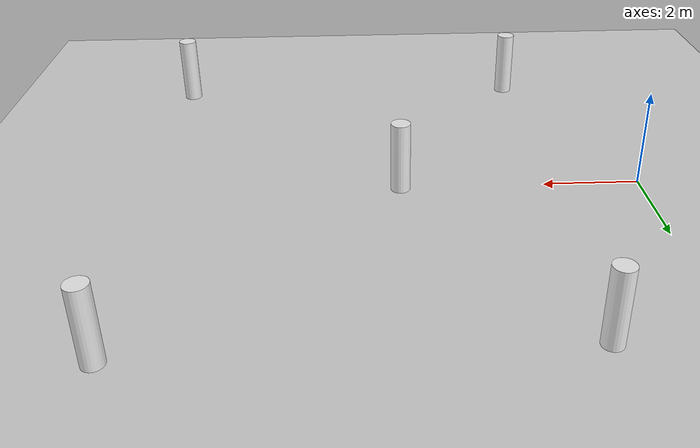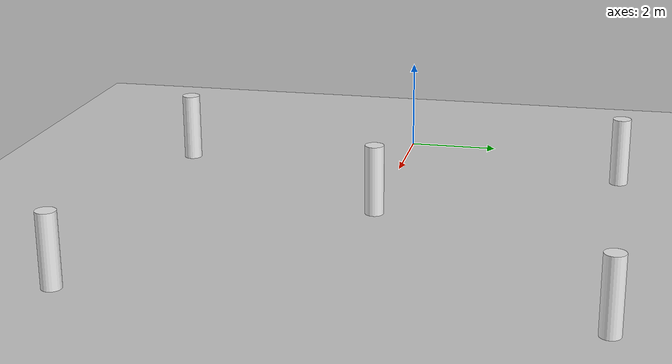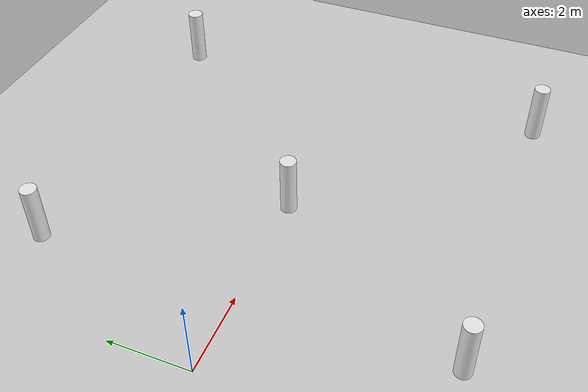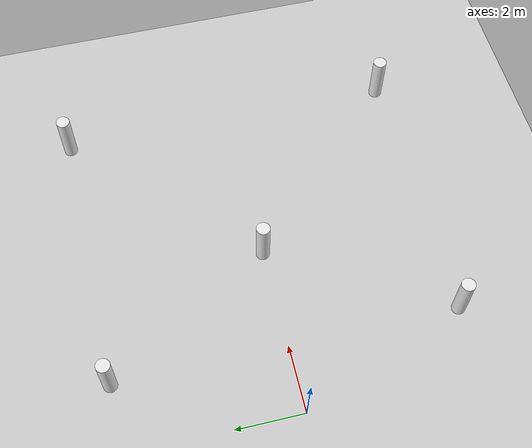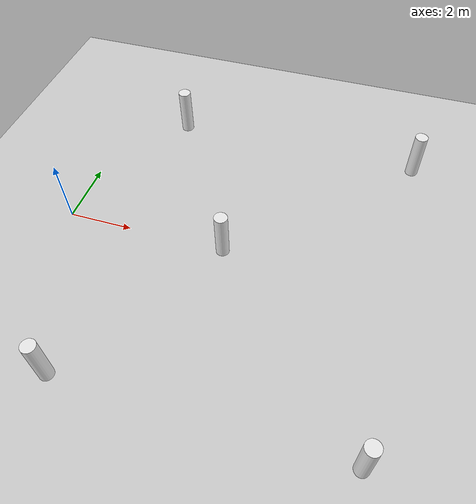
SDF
<?xml version="1.0" ?>
<sdf version="1.4">
  <world name="default">
    <!-- A global light source -->
    <include>
      <uri>model://sun</uri>
    </include>
    <!-- A ground plane -->
    <include>
      <uri>model://ground_plane</uri>
    </include>
    <!-- Cylinder -->
    <model name='unit_cylinder1'>
      <pose frame=''>2 -5 0.75 0 -0 0</pose>
      <link name='link'>
        <inertial>
          <mass>1</mass>
          <inertia>
            <ixx>0.145833</ixx>
            <ixy>0</ixy>
            <ixz>0</ixz>
            <iyy>0.145833</iyy>
            <iyz>0</iyz>
            <izz>0.125</izz>
          </inertia>
        </inertial>
        <collision name='collision'>
          <geometry>
            <cylinder>
              <radius>0.2</radius>
              <length>1.5</length>
            </cylinder>
          </geometry>
          <max_contacts>10</max_contacts>
        </collision>
        <visual name='visual'>
          <geometry>
            <cylinder>
              <radius>0.2</radius>
              <length>1.5</length>
            </cylinder>
          </geometry>
          <material>
            <script>
              <name>Gazebo/White</name>
              <uri>file://media/materials/scripts/gazebo.material</uri>
            </script>
          </material>
        </visual>
        <self_collide>0</self_collide>
        <kinematic>0</kinematic>
      </link>
    </model>

        <!-- Cylinder 2-->
    <model name='unit_cylinder2'>
      <pose frame=''>2 5 0.75 0 -0 0</pose>
      <link name='link'>
        <inertial>
          <mass>1</mass>
          <inertia>
            <ixx>0.145833</ixx>
            <ixy>0</ixy>
            <ixz>0</ixz>
            <iyy>0.145833</iyy>
            <iyz>0</iyz>
            <izz>0.125</izz>
          </inertia>
        </inertial>
        <collision name='collision'>
          <geometry>
            <cylinder>
              <radius>0.2</radius>
              <length>1.5</length>
            </cylinder>
          </geometry>
          <max_contacts>10</max_contacts>
        </collision>
        <visual name='visual'>
          <geometry>
            <cylinder>
              <radius>0.2</radius>
              <length>1.5</length>
            </cylinder>
          </geometry>
          <material>
            <script>
              <name>Gazebo/White</name>
              <uri>file://media/materials/scripts/gazebo.material</uri>
            </script>
          </material>
        </visual>
        <self_collide>0</self_collide>
        <kinematic>0</kinematic>
      </link>
    </model>

            <!-- Cylinder 3-->
    <model name='unit_cylinder3'>
      <pose frame=''>5 0 0.75 0 -0 0</pose>
      <link name='link'>
        <inertial>
          <mass>1</mass>
          <inertia>
            <ixx>0.145833</ixx>
            <ixy>0</ixy>
            <ixz>0</ixz>
            <iyy>0.145833</iyy>
            <iyz>0</iyz>
            <izz>0.125</izz>
          </inertia>
        </inertial>
        <collision name='collision'>
          <geometry>
            <cylinder>
              <radius>0.2</radius>
              <length>1.5</length>
            </cylinder>
          </geometry>
          <max_contacts>10</max_contacts>
        </collision>
        <visual name='visual'>
          <geometry>
            <cylinder>
              <radius>0.2</radius>
              <length>1.5</length>
            </cylinder>
          </geometry>
          <material>
            <script>
              <name>Gazebo/White</name>
              <uri>file://media/materials/scripts/gazebo.material</uri>
            </script>
          </material>
        </visual>
        <self_collide>0</self_collide>
        <kinematic>0</kinematic>
      </link>
    </model>

            <!-- Cylinder 4-->
    <model name='unit_cylinder4'>
      <pose frame=''>10 -5 0.75 0 -0 0</pose>
      <link name='link'>
        <inertial>
          <mass>1</mass>
          <inertia>
            <ixx>0.145833</ixx>
            <ixy>0</ixy>
            <ixz>0</ixz>
            <iyy>0.145833</iyy>
            <iyz>0</iyz>
            <izz>0.125</izz>
          </inertia>
        </inertial>
        <collision name='collision'>
          <geometry>
            <cylinder>
              <radius>0.2</radius>
              <length>1.5</length>
            </cylinder>
          </geometry>
          <max_contacts>10</max_contacts>
        </collision>
        <visual name='visual'>
          <geometry>
            <cylinder>
              <radius>0.2</radius>
              <length>1.5</length>
            </cylinder>
          </geometry>
          <material>
            <script>
              <name>Gazebo/White</name>
              <uri>file://media/materials/scripts/gazebo.material</uri>
            </script>
          </material>
        </visual>
        <self_collide>0</self_collide>
        <kinematic>0</kinematic>
      </link>
    </model>

            <!-- Cylinder 5-->
    <model name='unit_cylinder5'>
      <pose frame=''>10 5 0.75 0 -0 0</pose>
      <link name='link'>
        <inertial>
          <mass>1</mass>
          <inertia>
            <ixx>0.145833</ixx>
            <ixy>0</ixy>
            <ixz>0</ixz>
            <iyy>0.145833</iyy>
            <iyz>0</iyz>
            <izz>0.125</izz>
          </inertia>
        </inertial>
        <collision name='collision'>
          <geometry>
            <cylinder>
              <radius>0.2</radius>
              <length>1.5</length>
            </cylinder>
          </geometry>
          <max_contacts>10</max_contacts>
        </collision>
        <visual name='visual'>
          <geometry>
            <cylinder>
              <radius>0.2</radius>
              <length>1.5</length>
            </cylinder>
          </geometry>
          <material>
            <script>
              <name>Gazebo/White</name>
              <uri>file://media/materials/scripts/gazebo.material</uri>
            </script>
          </material>
        </visual>
        <self_collide>0</self_collide>
        <kinematic>0</kinematic>
      </link>
    </model>

  </world>
</sdf>
